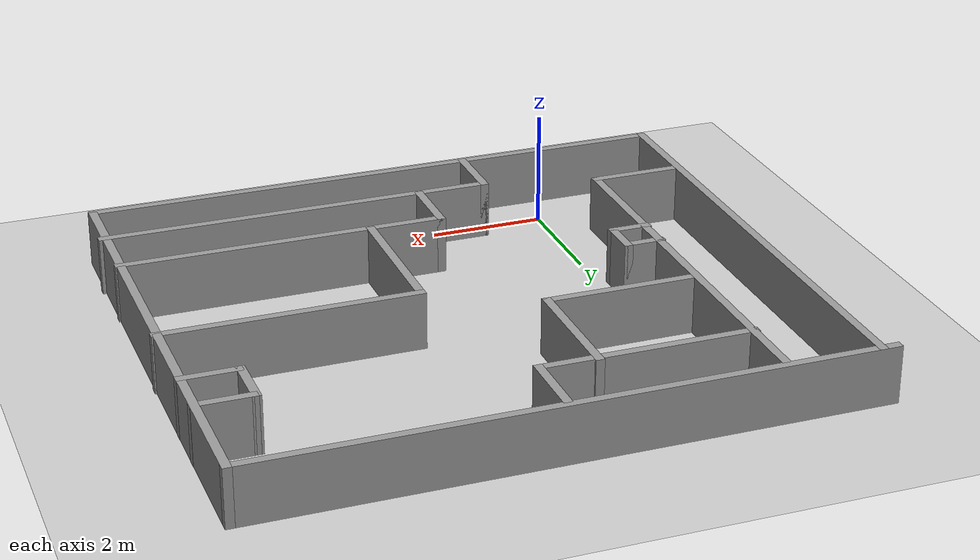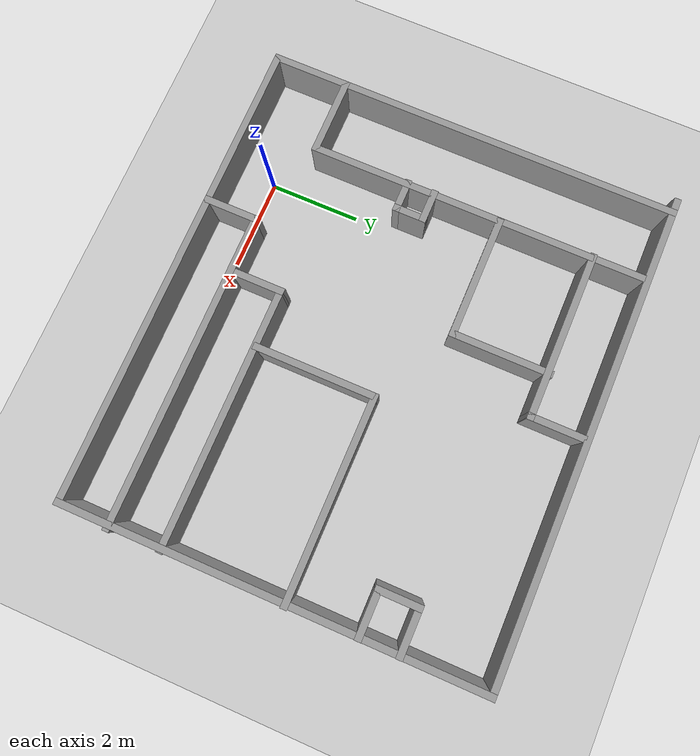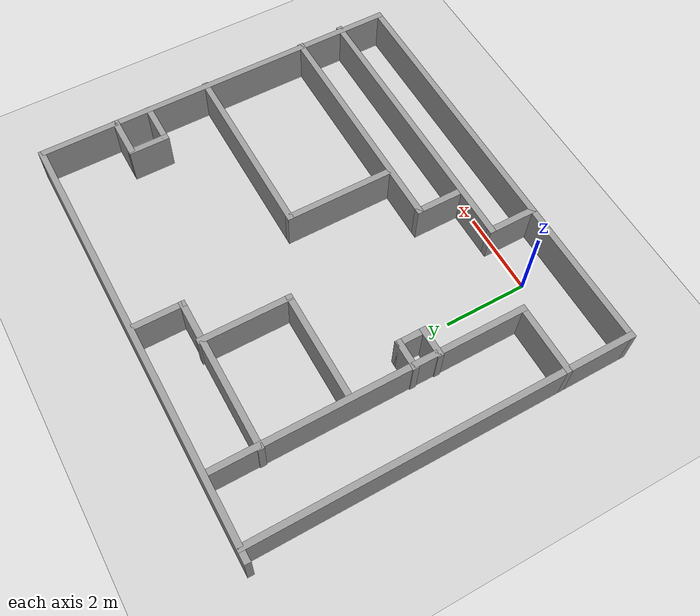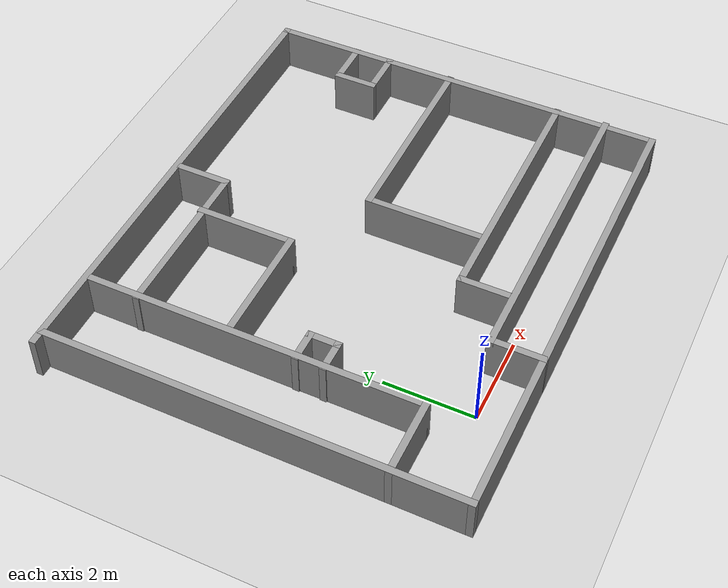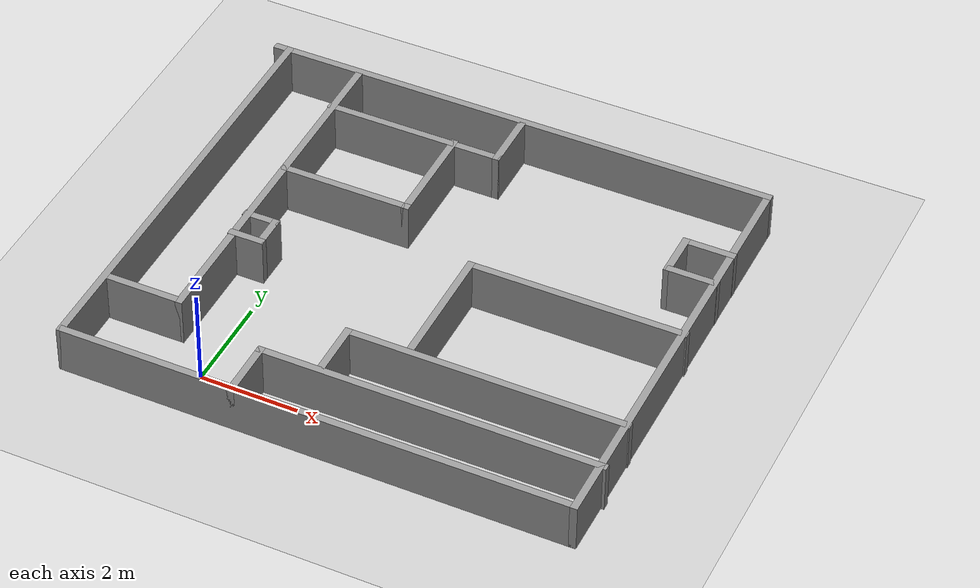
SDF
<sdf version="1.7">
 <world name="default">
  <light name="sun" type="directional">
   <pose>0 0 10 0 -0 0</pose>
   <diffuse>0.8 0.8 0.8 1</diffuse>
   <specular>0.2 0.2 0.2 1</specular>
   <attenuation>
    <range>1000</range>
    <constant>0.9</constant>
    <linear>0.01</linear>
    <quadratic>0.001</quadratic>
   </attenuation>
   <direction>-0.5 0.1 -0.9</direction>
   <spot><inner_angle>0</inner_angle><outer_angle>0</outer_angle><falloff>0</falloff></spot>
  </light>
  <model name="ground_plane">
   <static>1</static>
   <link name="link">
    <collision name="collision">
     <geometry><plane><normal>0 0 1</normal><size>100 100</size></plane></geometry>
     <surface><friction><ode><mu>100</mu><mu2>50</mu2></ode></friction></surface>
    </collision>
    <visual name="visual">
     <cast_shadows>0</cast_shadows>
     <geometry><plane><normal>0 0 1</normal><size>100 100</size></plane></geometry>
     <material>
      <script><uri>file://media/materials/scripts/gazebo.material</uri><name>Gazebo/Grey</name></script>
     </material>
    </visual>
   </link>
  </model>
  <gravity>0 0 -9.8</gravity>
  <magnetic_field>6e-06 2.3e-05 -4.2e-05</magnetic_field>
  <atmosphere type="adiabatic"/>
  <physics type="ode">
   <max_step_size>0.001</max_step_size>
   <real_time_factor>1</real_time_factor>
   <real_time_update_rate>1000</real_time_update_rate>
  </physics>
  <scene><ambient>0.4 0.4 0.4 1</ambient><background>0.7 0.7 0.7 1</background><shadows>1</shadows></scene>
  <spherical_coordinates>
   <surface_model>EARTH_WGS84</surface_model>
   <latitude_deg>0</latitude_deg>
   <longitude_deg>0</longitude_deg>
   <elevation>0</elevation>
   <heading_deg>0</heading_deg>
  </spherical_coordinates>
  <model name="test5">
   <pose>2.67182 3.68199 0 0 -0 0</pose>
   <link name="Wall_11">
    <collision name="Wall_11_Collision">
     <geometry><box><size>9.25 0.15 1</size></box></geometry>
     <pose>0 0 0.5 0 -0 0</pose>
    </collision>
    <visual name="Wall_11_Visual">
     <pose>0 0 0.5 0 -0 0</pose>
     <geometry><box><size>9.25 0.15 1</size></box></geometry>
     <material>
      <script><uri>file://media/materials/scripts/gazebo.material</uri><name>Gazebo/Grey</name></script>
      <ambient>1 1 1 1</ambient>
     </material>
     <meta><layer>0</layer></meta>
    </visual>
    <pose>-5.08 -0 0 0 -0 1.5708</pose>
   </link>
   <link name="Wall_13">
    <collision name="Wall_13_Collision">
     <geometry><box><size>1.25 0.15 1</size></box></geometry>
     <pose>0 0 0.5 0 -0 0</pose>
    </collision>
    <visual name="Wall_13_Visual">
     <pose>0 0 0.5 0 -0 0</pose>
     <geometry><box><size>1.25 0.15 1</size></box></geometry>
     <material>
      <script><uri>file://media/materials/scripts/gazebo.material</uri><name>Gazebo/Grey</name></script>
      <ambient>1 1 1 1</ambient>
     </material>
     <meta><layer>0</layer></meta>
    </visual>
    <pose>-1.52 -4 0 0 -0 1.5708</pose>
   </link>
   <link name="Wall_16">
    <collision name="Wall_16_Collision">
     <geometry><box><size>7 0.15 1</size></box></geometry>
     <pose>0 0 0.5 0 -0 0</pose>
    </collision>
    <visual name="Wall_16_Visual">
     <pose>0 0 0.5 0 -0 0</pose>
     <geometry><box><size>7 0.15 1</size></box></geometry>
     <material>
      <script><uri>file://media/materials/scripts/gazebo.material</uri><name>Gazebo/Grey</name></script>
      <ambient>1 1 1 1</ambient>
     </material>
     <meta><layer>0</layer></meta>
    </visual>
    <pose>1.905 -3.45 0 0 -0 0</pose>
   </link>
   <link name="Wall_18">
    <collision name="Wall_18_Collision">
     <geometry><box><size>1.25 0.15 1</size></box></geometry>
     <pose>0 0 0.5 0 -0 0</pose>
    </collision>
    <visual name="Wall_18_Visual">
     <pose>0 0 0.5 0 -0 0</pose>
     <geometry><box><size>1.25 0.15 1</size></box></geometry>
     <material>
      <script><uri>file://media/materials/scripts/gazebo.material</uri><name>Gazebo/Grey</name></script>
      <ambient>1 1 1 1</ambient>
     </material>
     <meta><layer>0</layer></meta>
    </visual>
    <pose>-0.307 -2.867 0 0 -0 1.5708</pose>
   </link>
   <link name="Wall_19">
    <collision name="Wall_19_Collision">
     <geometry><box><size>5.75 0.15 1</size></box></geometry>
     <pose>0 0 0.5 0 -0 0</pose>
    </collision>
    <visual name="Wall_19_Visual">
     <pose>0 0 0.5 0 -0 0</pose>
     <geometry><box><size>5.75 0.15 1</size></box></geometry>
     <material>
      <script><uri>file://media/materials/scripts/gazebo.material</uri><name>Gazebo/Grey</name></script>
      <ambient>1 1 1 1</ambient>
     </material>
     <meta><layer>0</layer></meta>
    </visual>
    <pose>2.493 -2.317 0 0 -0 0</pose>
   </link>
   <link name="Wall_21">
    <collision name="Wall_21_Collision">
     <geometry><box><size>2.75 0.15 1</size></box></geometry>
     <pose>0 0 0.5 0 -0 0</pose>
    </collision>
    <visual name="Wall_21_Visual">
     <pose>0 0 0.5 0 -0 0</pose>
     <geometry><box><size>2.75 0.15 1</size></box></geometry>
     <material>
      <script><uri>file://media/materials/scripts/gazebo.material</uri><name>Gazebo/Grey</name></script>
      <ambient>1 1 1 1</ambient>
     </material>
     <meta><layer>0</layer></meta>
    </visual>
    <pose>0.947001 -0.984 0 0 -0 1.5708</pose>
   </link>
   <link name="Wall_22">
    <collision name="Wall_22_Collision">
     <geometry><box><size>4.5 0.15 1</size></box></geometry>
     <pose>0 0 0.5 0 -0 0</pose>
    </collision>
    <visual name="Wall_22_Visual">
     <pose>0 0 0.5 0 -0 0</pose>
     <geometry><box><size>4.5 0.15 1</size></box></geometry>
     <material>
      <script><uri>file://media/materials/scripts/gazebo.material</uri><name>Gazebo/Grey</name></script>
      <ambient>1 1 1 1</ambient>
     </material>
     <meta><layer>0</layer></meta>
    </visual>
    <pose>3.122 0.316 0 0 -0 0</pose>
   </link>
   <link name="Wall_24">
    <collision name="Wall_24_Collision">
     <geometry><box><size>1.75 0.15 1</size></box></geometry>
     <pose>0 0 0.5 0 -0 0</pose>
    </collision>
    <visual name="Wall_24_Visual">
     <pose>0 0 0.5 0 -0 0</pose>
     <geometry><box><size>1.75 0.15 1</size></box></geometry>
     <material>
      <script><uri>file://media/materials/scripts/gazebo.material</uri><name>Gazebo/Grey</name></script>
      <ambient>1 1 1 1</ambient>
     </material>
     <meta><layer>0</layer></meta>
    </visual>
    <pose>-4.28 -2.932 0 0 -0 0</pose>
   </link>
   <link name="Wall_25">
    <collision name="Wall_25_Collision">
     <geometry><box><size>7.5 0.15 1</size></box></geometry>
     <pose>0 0 0.5 0 -0 0</pose>
    </collision>
    <visual name="Wall_25_Visual">
     <pose>0 0 0.5 0 -0 0</pose>
     <geometry><box><size>7.5 0.15 1</size></box></geometry>
     <material>
      <script><uri>file://media/materials/scripts/gazebo.material</uri><name>Gazebo/Grey</name></script>
      <ambient>1 1 1 1</ambient>
     </material>
     <meta><layer>0</layer></meta>
    </visual>
    <pose>-3.48 0.743 0 0 -0 1.5708</pose>
   </link>
   <link name="Wall_27">
    <collision name="Wall_27_Collision">
     <geometry><box><size>3.75 0.15 1</size></box></geometry>
     <pose>0 0 0.5 0 -0 0</pose>
    </collision>
    <visual name="Wall_27_Visual">
     <pose>0 0 0.5 0 -0 0</pose>
     <geometry><box><size>3.75 0.15 1</size></box></geometry>
     <material>
      <script><uri>file://media/materials/scripts/gazebo.material</uri><name>Gazebo/Grey</name></script>
      <ambient>1 1 1 1</ambient>
     </material>
     <meta><layer>0</layer></meta>
    </visual>
    <pose>-1.703 3.339 0 0 -0 0</pose>
   </link>
   <link name="Wall_28">
    <collision name="Wall_28_Collision">
     <geometry><box><size>1.25 0.15 1</size></box></geometry>
     <pose>0 0 0.5 0 -0 0</pose>
    </collision>
    <visual name="Wall_28_Visual">
     <pose>0 0 0.5 0 -0 0</pose>
     <geometry><box><size>1.25 0.15 1</size></box></geometry>
     <material>
      <script><uri>file://media/materials/scripts/gazebo.material</uri><name>Gazebo/Grey</name></script>
      <ambient>1 1 1 1</ambient>
     </material>
     <meta><layer>0</layer></meta>
    </visual>
    <pose>0.097 3.889 0 0 -0 1.5708</pose>
   </link>
   <link name="Wall_30">
    <collision name="Wall_30_Collision">
     <geometry><box><size>2.75 0.15 1</size></box></geometry>
     <pose>0 0 0.5 0 -0 0</pose>
    </collision>
    <visual name="Wall_30_Visual">
     <pose>0 0 0.5 0 -0 0</pose>
     <geometry><box><size>2.75 0.15 1</size></box></geometry>
     <material>
      <script><uri>file://media/materials/scripts/gazebo.material</uri><name>Gazebo/Grey</name></script>
      <ambient>1 1 1 1</ambient>
     </material>
     <meta><layer>0</layer></meta>
    </visual>
    <pose>-2.162 1.276 0 0 -0 0</pose>
   </link>
   <link name="Wall_33">
    <collision name="Wall_33_Collision">
     <geometry><box><size>2.25 0.15 1</size></box></geometry>
     <pose>0 0 0.5 0 -0 0</pose>
    </collision>
    <visual name="Wall_33_Visual">
     <pose>0 0 0.5 0 -0 0</pose>
     <geometry><box><size>2.25 0.15 1</size></box></geometry>
     <material>
      <script><uri>file://media/materials/scripts/gazebo.material</uri><name>Gazebo/Grey</name></script>
      <ambient>1 1 1 1</ambient>
     </material>
     <meta><layer>0</layer></meta>
    </visual>
    <pose>-0.862 2.326 0 0 -0 1.5708</pose>
   </link>
   <link name="Wall_35">
    <collision name="Wall_35_Collision">
     <geometry><box><size>1.05544 0.15 1</size></box></geometry>
     <pose>0 0 0.5 0 -0 0</pose>
    </collision>
    <visual name="Wall_35_Visual">
     <pose>0 0 0.5 0 -0 0</pose>
     <geometry><box><size>1.05544 0.15 1</size></box></geometry>
     <material>
      <script><uri>file://media/materials/scripts/gazebo.material</uri><name>Gazebo/Grey</name></script>
      <ambient>1 1 1 1</ambient>
     </material>
     <meta><layer>0</layer></meta>
    </visual>
    <pose>4.82328 1.84223 0 0 -0 3.14109</pose>
   </link>
   <link name="Wall_36">
    <collision name="Wall_36_Collision">
     <geometry><box><size>1 0.15 1</size></box></geometry>
     <pose>0 0 0.5 0 -0 0</pose>
    </collision>
    <visual name="Wall_36_Visual">
     <pose>0 0 0.5 0 -0 0</pose>
     <geometry><box><size>1 0.15 1</size></box></geometry>
     <material>
      <script><uri>file://media/materials/scripts/gazebo.material</uri><name>Gazebo/Grey</name></script>
      <ambient>1 1 1 1</ambient>
     </material>
     <meta><layer>0</layer></meta>
    </visual>
    <pose>4.3301 2.26746 0 0 -0 1.5708</pose>
   </link>
   <link name="Wall_39">
    <collision name="Wall_39_Collision">
     <geometry><box><size>1.05544 0.15 1</size></box></geometry>
     <pose>0 0 0.5 0 -0 0</pose>
    </collision>
    <visual name="Wall_39_Visual">
     <pose>0 0 0.5 0 -0 0</pose>
     <geometry><box><size>1.05544 0.15 1</size></box></geometry>
     <material>
      <script><uri>file://media/materials/scripts/gazebo.material</uri><name>Gazebo/Grey</name></script>
      <ambient>1 1 1 1</ambient>
     </material>
     <meta><layer>0</layer></meta>
    </visual>
    <pose>4.82328 2.69223 0 0 -0 -0.000503</pose>
   </link>
   <link name="Wall_4">
    <collision name="Wall_4_Collision">
     <geometry><box><size>10.5 0.15 1</size></box></geometry>
     <pose>0 0 0.5 0 -0 0</pose>
    </collision>
    <visual name="Wall_4_Visual">
     <pose>0 0 0.5 0 -0 0</pose>
     <geometry><box><size>10.5 0.15 1</size></box></geometry>
     <material>
      <script><uri>file://media/materials/scripts/gazebo.material</uri><name>Gazebo/Grey</name></script>
      <ambient>1 1 1 1</ambient>
     </material>
     <meta><layer>0</layer></meta>
    </visual>
    <pose>0.095 -4.55 0 0 -0 0</pose>
   </link>
   <link name="Wall_41">
    <collision name="Wall_41_Collision">
     <geometry><box><size>0.75 0.15 1</size></box></geometry>
     <pose>0 0 0.5 0 -0 0</pose>
    </collision>
    <visual name="Wall_41_Visual">
     <pose>0 0 0.5 0 -0 0</pose>
     <geometry><box><size>0.75 0.15 1</size></box></geometry>
     <material>
      <script><uri>file://media/materials/scripts/gazebo.material</uri><name>Gazebo/Grey</name></script>
      <ambient>1 1 1 1</ambient>
     </material>
     <meta><layer>0</layer></meta>
    </visual>
    <pose>-3.203 -0.221 0 0 -0 0</pose>
   </link>
   <link name="Wall_42">
    <collision name="Wall_42_Collision">
     <geometry><box><size>0.75 0.15 1</size></box></geometry>
     <pose>0 0 0.5 0 -0 0</pose>
    </collision>
    <visual name="Wall_42_Visual">
     <pose>0 0 0.5 0 -0 0</pose>
     <geometry><box><size>0.75 0.15 1</size></box></geometry>
     <material>
      <script><uri>file://media/materials/scripts/gazebo.material</uri><name>Gazebo/Grey</name></script>
      <ambient>1 1 1 1</ambient>
     </material>
     <meta><layer>0</layer></meta>
    </visual>
    <pose>-2.903 -0.521 0 0 -0 -1.5708</pose>
   </link>
   <link name="Wall_46">
    <collision name="Wall_46_Collision">
     <geometry><box><size>0.75 0.15 1</size></box></geometry>
     <pose>0 0 0.5 0 -0 0</pose>
    </collision>
    <visual name="Wall_46_Visual">
     <pose>0 0 0.5 0 -0 0</pose>
     <geometry><box><size>0.75 0.15 1</size></box></geometry>
     <material>
      <script><uri>file://media/materials/scripts/gazebo.material</uri><name>Gazebo/Grey</name></script>
      <ambient>1 1 1 1</ambient>
     </material>
     <meta><layer>0</layer></meta>
    </visual>
    <pose>-3.203 -0.821 0 0 -0 3.14159</pose>
   </link>
   <link name="Wall_6">
    <collision name="Wall_6_Collision">
     <geometry><box><size>9.25 0.15 1</size></box></geometry>
     <pose>0 0 0.5 0 -0 0</pose>
    </collision>
    <visual name="Wall_6_Visual">
     <pose>0 0 0.5 0 -0 0</pose>
     <geometry><box><size>9.25 0.15 1</size></box></geometry>
     <material>
      <script><uri>file://media/materials/scripts/gazebo.material</uri><name>Gazebo/Grey</name></script>
      <ambient>1 1 1 1</ambient>
     </material>
     <meta><layer>0</layer></meta>
    </visual>
    <pose>5.27 -0 0 0 -0 1.5708</pose>
   </link>
   <link name="Wall_7">
    <collision name="Wall_7_Collision">
     <geometry><box><size>10.75 0.15 1</size></box></geometry>
     <pose>0 0 0.5 0 -0 0</pose>
    </collision>
    <visual name="Wall_7_Visual">
     <pose>0 0 0.5 0 -0 0</pose>
     <geometry><box><size>10.75 0.15 1</size></box></geometry>
     <material>
      <script><uri>file://media/materials/scripts/gazebo.material</uri><name>Gazebo/Grey</name></script>
      <ambient>1 1 1 1</ambient>
     </material>
     <meta><layer>0</layer></meta>
    </visual>
    <pose>-0.03 4.55 0 0 -0 3.14159</pose>
   </link>
   <static>1</static>
  </model>
 </world>
</sdf>
